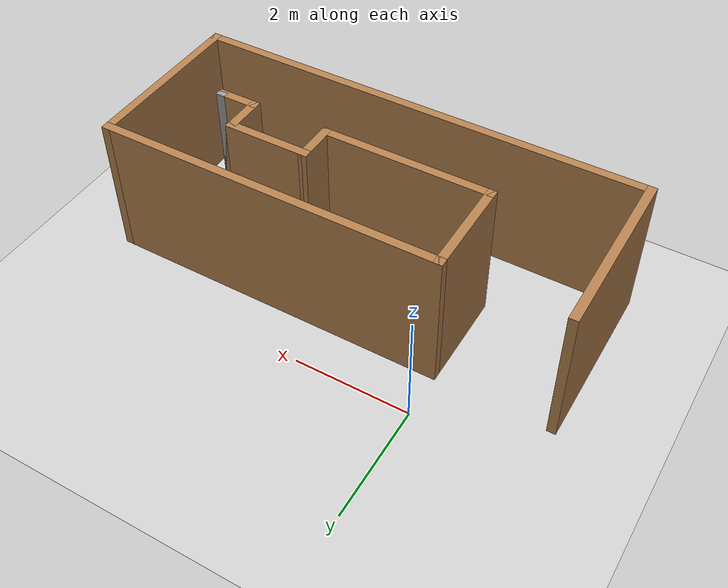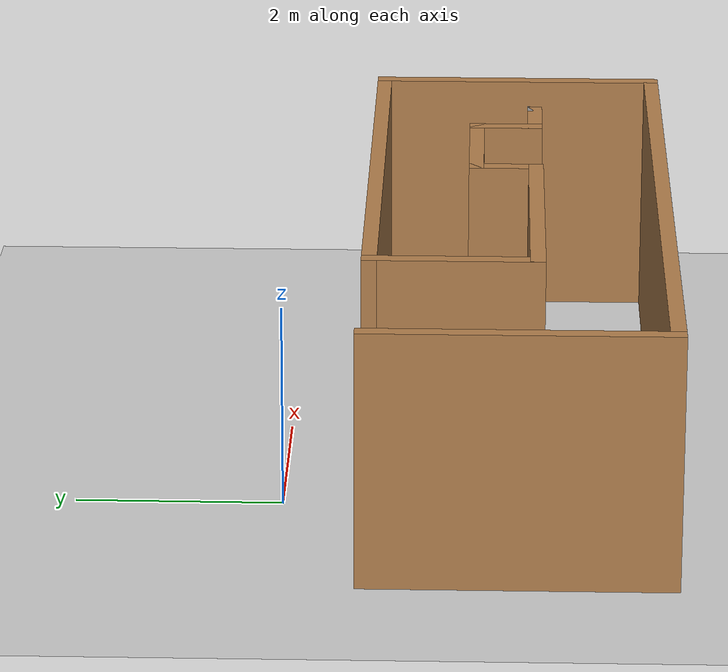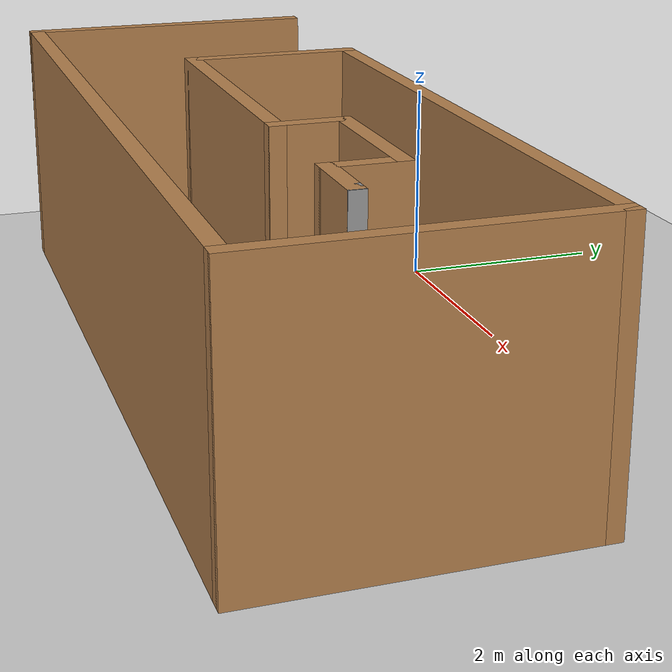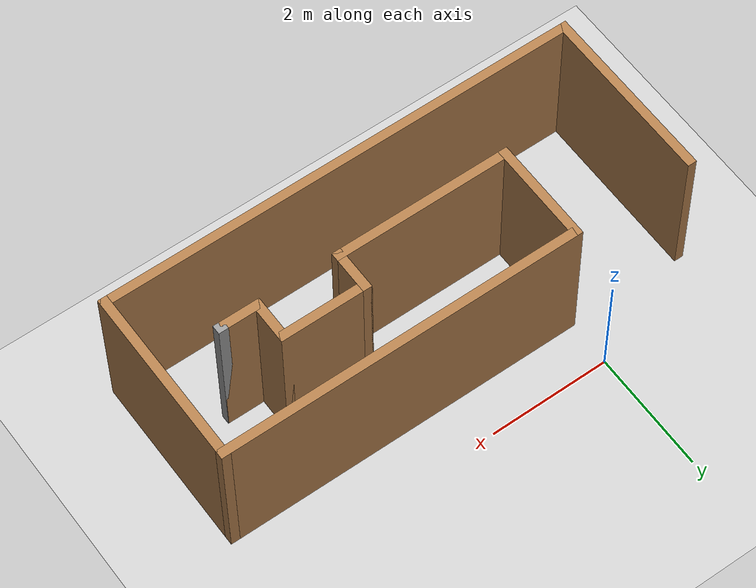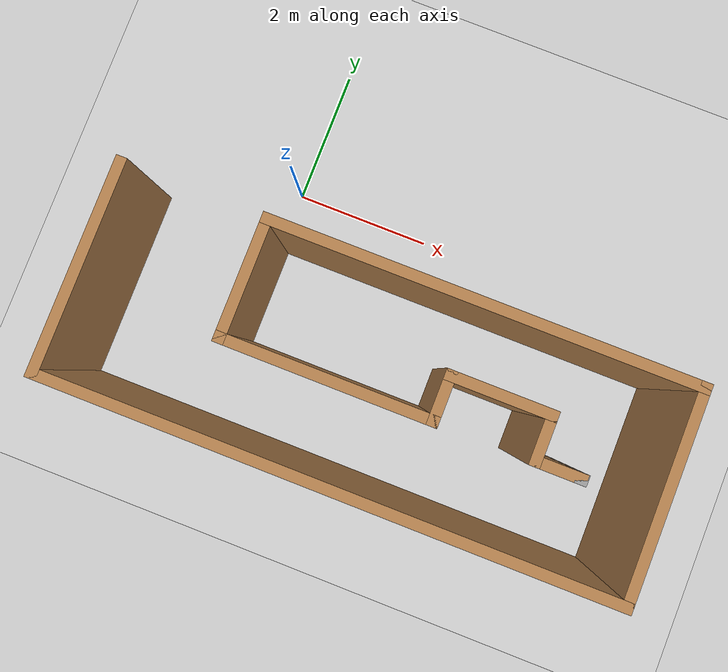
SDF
<sdf version="1.7">
 <world name="default">
  <light name="sun" type="directional">
   <pose>0 0 10 0 -0 0</pose>
   <diffuse>0.8 0.8 0.8 1</diffuse>
   <specular>0.2 0.2 0.2 1</specular>
   <attenuation>
    <range>1000</range>
    <constant>0.9</constant>
    <linear>0.01</linear>
    <quadratic>0.001</quadratic>
   </attenuation>
   <direction>-0.5 0.1 -0.9</direction>
   <spot><inner_angle>0</inner_angle><outer_angle>0</outer_angle><falloff>0</falloff></spot>
  </light>
  <model name="ground_plane">
   <static>1</static>
   <link name="link">
    <collision name="collision">
     <geometry><plane><normal>0 0 1</normal><size>100 100</size></plane></geometry>
     <surface>
      <contact><collide_bitmask>65535</collide_bitmask></contact>
      <friction><ode><mu>100</mu><mu2>50</mu2></ode></friction>
     </surface>
    </collision>
    <visual name="visual">
     <cast_shadows>0</cast_shadows>
     <geometry><plane><normal>0 0 1</normal><size>100 100</size></plane></geometry>
     <material>
      <script><uri>file://media/materials/scripts/gazebo.material</uri><name>Gazebo/Grey</name></script>
     </material>
    </visual>
   </link>
  </model>
  <gravity>0 0 -9.8</gravity>
  <magnetic_field>6e-06 2.3e-05 -4.2e-05</magnetic_field>
  <atmosphere type="adiabatic"/>
  <physics type="ode">
   <max_step_size>0.001</max_step_size>
   <real_time_factor>1</real_time_factor>
   <real_time_update_rate>1000</real_time_update_rate>
  </physics>
  <scene><ambient>0.4 0.4 0.4 1</ambient><background>0.7 0.7 0.7 1</background><shadows>1</shadows></scene>
  <spherical_coordinates>
   <surface_model>EARTH_WGS84</surface_model>
   <latitude_deg>0</latitude_deg>
   <longitude_deg>0</longitude_deg>
   <elevation>0</elevation>
   <heading_deg>0</heading_deg>
  </spherical_coordinates>
  <model name="assignment_model">
   <pose>1.72281 -2.24899 0 0 -0 0</pose>
   <link name="Wall_10">
    <collision name="Wall_10_Collision">
     <geometry><box><size>6 0.15 2.5</size></box></geometry>
     <pose>0 0 1.25 0 -0 0</pose>
    </collision>
    <visual name="Wall_10_Visual">
     <pose>0 0 1.25 0 -0 0</pose>
     <geometry><box><size>6 0.15 2.5</size></box></geometry>
     <material>
      <script><uri>file://media/materials/scripts/gazebo.material</uri><name>Gazebo/Wood</name></script>
      <ambient>1 1 1 1</ambient>
     </material>
     <meta><layer>0</layer></meta>
    </visual>
    <pose>1.24676 1.425 0 0 -0 3.14159</pose>
   </link>
   <link name="Wall_11">
    <collision name="Wall_11_Collision">
     <geometry><box><size>1.75 0.15 2.5</size></box></geometry>
     <pose>0 0 1.25 0 -0 0</pose>
    </collision>
    <visual name="Wall_11_Visual">
     <pose>0 0 1.25 0 -0 0</pose>
     <geometry><box><size>1.75 0.15 2.5</size></box></geometry>
     <material>
      <script><uri>file://media/materials/scripts/gazebo.material</uri><name>Gazebo/Wood</name></script>
      <ambient>1 1 1 1</ambient>
     </material>
     <meta><layer>0</layer></meta>
    </visual>
    <pose>-1.67824 0.625 0 0 -0 -1.5708</pose>
   </link>
   <link name="Wall_12">
    <collision name="Wall_12_Collision">
     <geometry><box><size>3 0.15 2.5</size></box></geometry>
     <pose>0 0 1.25 0 -0 0</pose>
    </collision>
    <visual name="Wall_12_Visual">
     <pose>0 0 1.25 0 -0 0</pose>
     <geometry><box><size>3 0.15 2.5</size></box></geometry>
     <material>
      <script><uri>file://media/materials/scripts/gazebo.material</uri><name>Gazebo/Wood</name></script>
      <ambient>1 1 1 1</ambient>
     </material>
     <meta><layer>0</layer></meta>
    </visual>
    <pose>-0.253238 -0.175 0 0 -0 0</pose>
   </link>
   <link name="Wall_13">
    <collision name="Wall_13_Collision">
     <geometry><box><size>0.75 0.15 2.5</size></box></geometry>
     <pose>0 0 1.25 0 -0 0</pose>
    </collision>
    <visual name="Wall_13_Visual">
     <pose>0 0 1.25 0 -0 0</pose>
     <geometry><box><size>0.75 0.15 2.5</size></box></geometry>
     <material>
      <script><uri>file://media/materials/scripts/gazebo.material</uri><name>Gazebo/Wood</name></script>
      <ambient>1 1 1 1</ambient>
     </material>
     <meta><layer>0</layer></meta>
    </visual>
    <pose>1.17176 0.125 0 0 -0 1.5708</pose>
   </link>
   <link name="Wall_14">
    <collision name="Wall_14_Collision">
     <geometry><box><size>1.5 0.15 2.5</size></box></geometry>
     <pose>0 0 1.25 0 -0 0</pose>
    </collision>
    <visual name="Wall_14_Visual">
     <pose>0 0 1.25 0 -0 0</pose>
     <geometry><box><size>1.5 0.15 2.5</size></box></geometry>
     <material>
      <script><uri>file://media/materials/scripts/gazebo.material</uri><name>Gazebo/Wood</name></script>
      <ambient>1 1 1 1</ambient>
     </material>
     <meta><layer>0</layer></meta>
    </visual>
    <pose>1.84676 0.425 0 0 -0 0</pose>
   </link>
   <link name="Wall_15">
    <collision name="Wall_15_Collision">
     <geometry><box><size>0.75 0.15 2.5</size></box></geometry>
     <pose>0 0 1.25 0 -0 0</pose>
    </collision>
    <visual name="Wall_15_Visual">
     <pose>0 0 1.25 0 -0 0</pose>
     <geometry><box><size>0.75 0.15 2.5</size></box></geometry>
     <material>
      <script><uri>file://media/materials/scripts/gazebo.material</uri><name>Gazebo/Wood</name></script>
      <ambient>1 1 1 1</ambient>
     </material>
     <meta><layer>0</layer></meta>
    </visual>
    <pose>2.52176 0.125 0 0 -0 -1.5708</pose>
   </link>
   <link name="Wall_16">
    <collision name="Wall_16_Collision">
     <geometry><box><size>0.75 0.15 2.5</size></box></geometry>
     <pose>0 0 1.25 0 -0 0</pose>
    </collision>
    <visual name="Wall_16_Visual">
     <pose>0 0 1.25 0 -0 0</pose>
     <geometry><box><size>0.75 0.15 2.5</size></box></geometry>
     <material>
      <script><uri>file://media/materials/scripts/gazebo.material</uri><name>Gazebo/Wood</name></script>
      <ambient>1 1 1 1</ambient>
     </material>
     <meta><layer>0</layer></meta>
    </visual>
    <pose>2.82176 -0.175 0 0 -0 0</pose>
   </link>
   <link name="Wall_17">
    <collision name="Wall_17_Collision">
     <geometry><box><size>0.16 0.15 2.5</size></box></geometry>
     <pose>0 0 1.25 0 -0 0</pose>
    </collision>
    <visual name="Wall_17_Visual">
     <pose>0 0 1.25 0 -0 0</pose>
     <geometry><box><size>0.16 0.15 2.5</size></box></geometry>
     <material>
      <script><uri>file://media/materials/scripts/gazebo.material</uri><name>Gazebo/Grey</name></script>
      <ambient>1 1 1 1</ambient>
     </material>
     <meta><layer>0</layer></meta>
    </visual>
    <pose>3.12676 -0.175 0 0 -0 0</pose>
   </link>
   <link name="Wall_7">
    <collision name="Wall_7_Collision">
     <geometry><box><size>3 0.15 2.5</size></box></geometry>
     <pose>0 0 1.25 0 -0 0</pose>
    </collision>
    <visual name="Wall_7_Visual">
     <pose>0 0 1.25 0 -0 0</pose>
     <geometry><box><size>3 0.15 2.5</size></box></geometry>
     <material>
      <script><uri>file://media/materials/scripts/gazebo.material</uri><name>Gazebo/Wood</name></script>
      <ambient>1 1 1 1</ambient>
     </material>
     <meta><layer>0</layer></meta>
    </visual>
    <pose>-3.67824 0 0 0 -0 -1.5708</pose>
   </link>
   <link name="Wall_8">
    <collision name="Wall_8_Collision">
     <geometry><box><size>8 0.15 2.5</size></box></geometry>
     <pose>0 0 1.25 0 -0 0</pose>
    </collision>
    <visual name="Wall_8_Visual">
     <pose>0 0 1.25 0 -0 0</pose>
     <geometry><box><size>8 0.15 2.5</size></box></geometry>
     <material>
      <script><uri>file://media/materials/scripts/gazebo.material</uri><name>Gazebo/Wood</name></script>
      <ambient>1 1 1 1</ambient>
     </material>
     <meta><layer>0</layer></meta>
    </visual>
    <pose>0.246761 -1.425 0 0 -0 0</pose>
   </link>
   <link name="Wall_9">
    <collision name="Wall_9_Collision">
     <geometry><box><size>3 0.15 2.5</size></box></geometry>
     <pose>0 0 1.25 0 -0 0</pose>
    </collision>
    <visual name="Wall_9_Visual">
     <pose>0 0 1.25 0 -0 0</pose>
     <geometry><box><size>3 0.15 2.5</size></box></geometry>
     <material>
      <script><uri>file://media/materials/scripts/gazebo.material</uri><name>Gazebo/Wood</name></script>
      <ambient>1 1 1 1</ambient>
     </material>
     <meta><layer>0</layer></meta>
    </visual>
    <pose>4.17176 0 0 0 -0 1.5708</pose>
   </link>
   <static>1</static>
  </model>
 </world>
</sdf>
